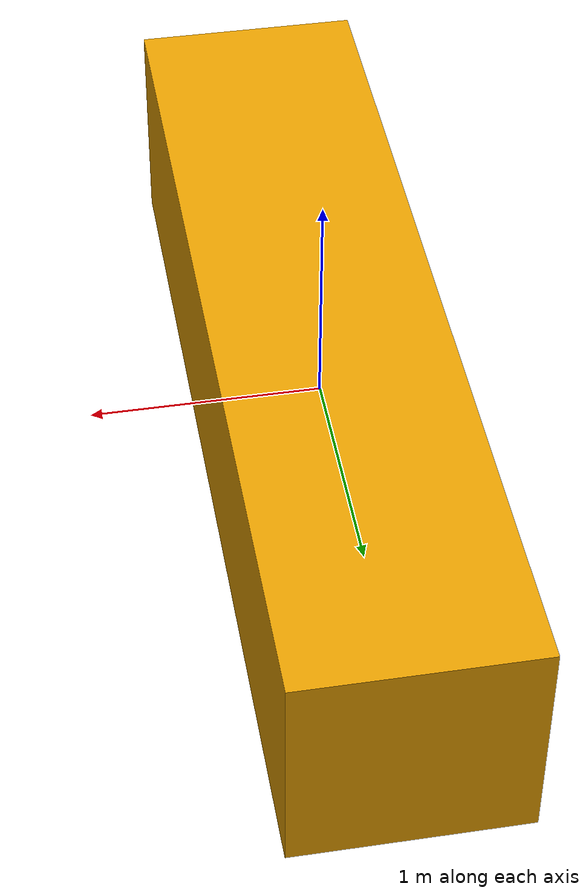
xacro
<?xml version='1.0'?>
<robot name="large_cuboid_1" xmlns:xacro="http://www.ros.org/wiki/xacro">
    <link name="base_link">
        <visual>
            <geometry>
                <box size="1 4.07422 1"/>
            </geometry>
        </visual>
        <collision>
            <geometry>
                <box size="1 4.07422 1"/>
            </geometry>
        </collision>
        <inertial>
            <mass value="1"/>
            <inertia ixx="1.46661" ixy="0.0" ixz="0.0" iyy="0.166667" iyz="0.0" izz="1.46661"/>
        </inertial>
    </link>
</robot>
